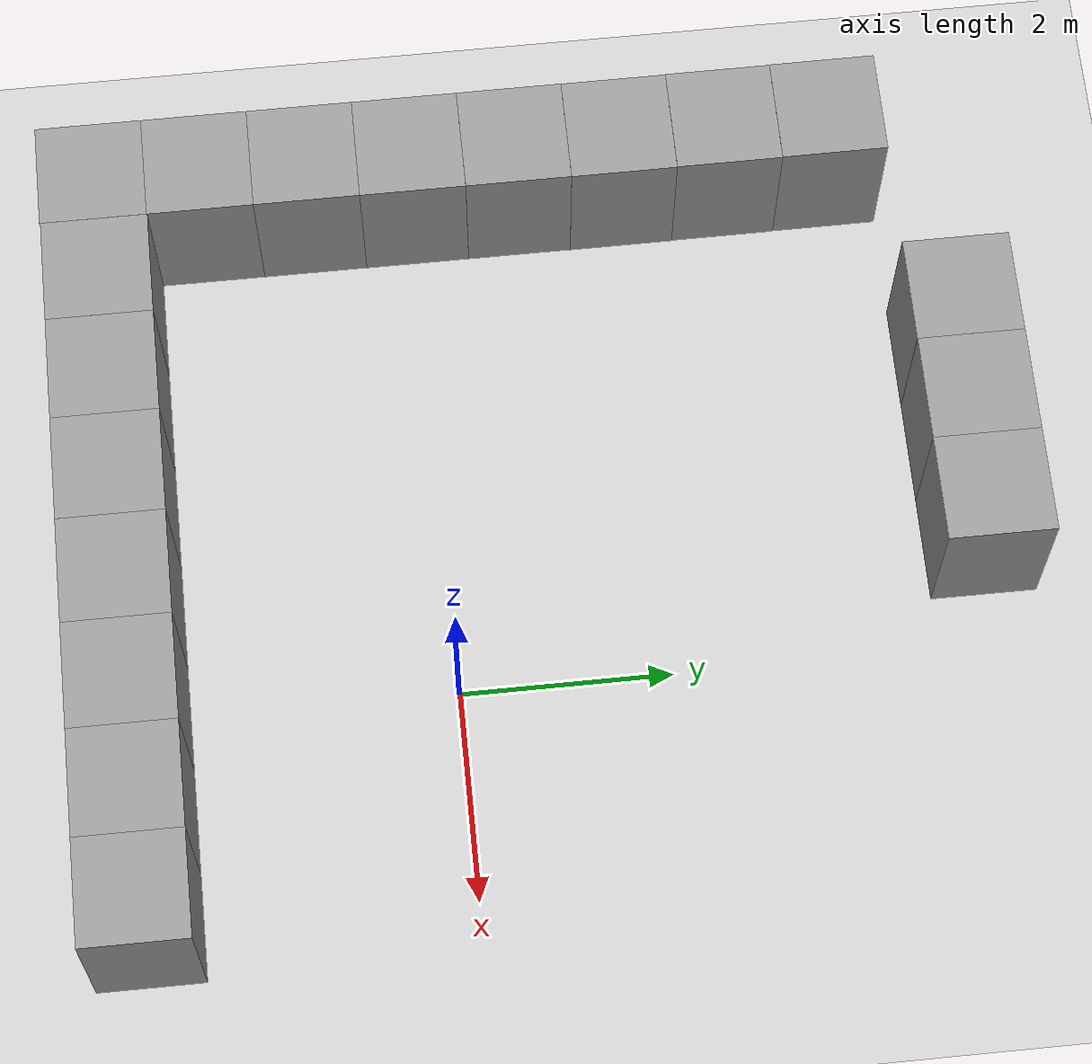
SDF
<sdf version="1.4">
 <world name="default">
  <model name="ground_plane">
   <static>1</static>
   <link name="link">
    <collision name="collision">
     <geometry><plane><normal>0 0 1</normal><size>100 100</size></plane></geometry>
     <surface><friction><ode><mu>100</mu><mu2>50</mu2></ode></friction></surface>
    </collision>
    <visual name="visual">
     <cast_shadows>0</cast_shadows>
     <geometry><plane><normal>0 0 1</normal><size>100 100</size></plane></geometry>
     <material>
      <script><uri>file://media/materials/scripts/gazebo.material</uri><name>Gazebo/Grey</name></script>
     </material>
    </visual>
    <velocity_decay><linear>0</linear><angular>0</angular></velocity_decay>
   </link>
  </model>
  <model name="unit_box_3">
   <pose>-3.0164 4.98791 0.5 0 -0 2.1e-05</pose>
   <static>true</static>
   <link name="link">
    <inertial>
     <mass>1</mass>
     <inertia><ixx>1</ixx><ixy>0</ixy><ixz>0</ixz><iyy>1</iyy><iyz>0</iyz><izz>1</izz></inertia>
    </inertial>
    <collision name="collision"><geometry><box><size>1 1 2</size></box></geometry></collision>
    <visual name="visual">
     <geometry><box><size>1 1 2</size></box></geometry>
     <material>
      <script><uri>file://media/materials/scripts/gazebo.material</uri><name>Gazebo/Grey</name></script>
     </material>
    </visual>
    <velocity_decay><linear>0</linear><angular>0</angular></velocity_decay>
   </link>
   <static>0</static>
  </model>
  <model name="unit_box_4">
   <pose>-2.01625 4.98914 0.5 0 -0 -0.000278</pose>
   <static>true</static>
   <link name="link">
    <inertial>
     <mass>1</mass>
     <inertia><ixx>1</ixx><ixy>0</ixy><ixz>0</ixz><iyy>1</iyy><iyz>0</iyz><izz>1</izz></inertia>
    </inertial>
    <collision name="collision"><geometry><box><size>1 1 2</size></box></geometry></collision>
    <visual name="visual">
     <geometry><box><size>1 1 2</size></box></geometry>
     <material>
      <script><uri>file://media/materials/scripts/gazebo.material</uri><name>Gazebo/Grey</name></script>
     </material>
    </visual>
    <velocity_decay><linear>0</linear><angular>0</angular></velocity_decay>
   </link>
   <static>0</static>
  </model>
  <model name="unit_box_5">
   <pose>-1.01623 4.98884 0.5 0 -0 -0.000319</pose>
   <static>true</static>
   <link name="link">
    <inertial>
     <mass>1</mass>
     <inertia><ixx>1</ixx><ixy>0</ixy><ixz>0</ixz><iyy>1</iyy><iyz>0</iyz><izz>1</izz></inertia>
    </inertial>
    <collision name="collision"><geometry><box><size>1 1 2</size></box></geometry></collision>
    <visual name="visual">
     <geometry><box><size>1 1 2</size></box></geometry>
     <material>
      <script><uri>file://media/materials/scripts/gazebo.material</uri><name>Gazebo/Grey</name></script>
     </material>
    </visual>
    <velocity_decay><linear>0</linear><angular>0</angular></velocity_decay>
   </link>
   <static>0</static>
  </model>
  <model name="unit_box_15">
   <pose>-0.999934 -2.99993 0.5 0 0 -3.9e-05</pose>
   <static>true</static>
   <link name="link">
    <inertial>
     <mass>1</mass>
     <inertia><ixx>1</ixx><ixy>0</ixy><ixz>0</ixz><iyy>1</iyy><iyz>0</iyz><izz>1</izz></inertia>
    </inertial>
    <collision name="collision"><geometry><box><size>1 1 2</size></box></geometry></collision>
    <visual name="visual">
     <geometry><box><size>1 1 2</size></box></geometry>
     <material>
      <script><uri>file://media/materials/scripts/gazebo.material</uri><name>Gazebo/Grey</name></script>
     </material>
    </visual>
    <velocity_decay><linear>0</linear><angular>0</angular></velocity_decay>
   </link>
   <static>0</static>
  </model>
  <model name="unit_box_16">
   <pose>6.7e-05 -2.99994 0.5 0 -0 -3.6e-05</pose>
   <static>true</static>
   <link name="link">
    <inertial>
     <mass>1</mass>
     <inertia><ixx>1</ixx><ixy>0</ixy><ixz>0</ixz><iyy>1</iyy><iyz>0</iyz><izz>1</izz></inertia>
    </inertial>
    <collision name="collision"><geometry><box><size>1 1 2</size></box></geometry></collision>
    <visual name="visual">
     <geometry><box><size>1 1 2</size></box></geometry>
     <material>
      <script><uri>file://media/materials/scripts/gazebo.material</uri><name>Gazebo/Grey</name></script>
     </material>
    </visual>
    <velocity_decay><linear>0</linear><angular>0</angular></velocity_decay>
   </link>
   <static>0</static>
  </model>
  <model name="unit_box_17">
   <pose>1.00008 -2.99994 0.5 -0 -0 -1.9e-05</pose>
   <static>true</static>
   <link name="link">
    <inertial>
     <mass>1</mass>
     <inertia><ixx>1</ixx><ixy>0</ixy><ixz>0</ixz><iyy>1</iyy><iyz>0</iyz><izz>1</izz></inertia>
    </inertial>
    <collision name="collision"><geometry><box><size>1 1 2</size></box></geometry></collision>
    <visual name="visual">
     <geometry><box><size>1 1 2</size></box></geometry>
     <material>
      <script><uri>file://media/materials/scripts/gazebo.material</uri><name>Gazebo/Grey</name></script>
     </material>
    </visual>
    <velocity_decay><linear>0</linear><angular>0</angular></velocity_decay>
   </link>
   <static>0</static>
  </model>
  <model name="unit_box_18">
   <pose>2.00008 -2.99995 0.5 0 0 -1.5e-05</pose>
   <static>true</static>
   <link name="link">
    <inertial>
     <mass>1</mass>
     <inertia><ixx>1</ixx><ixy>0</ixy><ixz>0</ixz><iyy>1</iyy><iyz>0</iyz><izz>1</izz></inertia>
    </inertial>
    <collision name="collision"><geometry><box><size>1 1 2</size></box></geometry></collision>
    <visual name="visual">
     <geometry><box><size>1 1 2</size></box></geometry>
     <material>
      <script><uri>file://media/materials/scripts/gazebo.material</uri><name>Gazebo/Grey</name></script>
     </material>
    </visual>
    <velocity_decay><linear>0</linear><angular>0</angular></velocity_decay>
   </link>
   <static>0</static>
  </model>
  <model name="unit_box_40">
   <pose>-5.01481 3.99235 0.5 0 -0 0.003225</pose>
   <static>true</static>
   <link name="link">
    <inertial>
     <mass>1</mass>
     <inertia><ixx>1</ixx><ixy>0</ixy><ixz>0</ixz><iyy>1</iyy><iyz>0</iyz><izz>1</izz></inertia>
    </inertial>
    <collision name="collision"><geometry><box><size>1 1 2</size></box></geometry></collision>
    <visual name="visual">
     <geometry><box><size>1 1 2</size></box></geometry>
     <material>
      <script><uri>file://media/materials/scripts/gazebo.material</uri><name>Gazebo/Grey</name></script>
     </material>
    </visual>
    <velocity_decay><linear>0</linear><angular>0</angular></velocity_decay>
   </link>
   <static>0</static>
  </model>
  <model name="unit_box_41">
   <pose>-5.00826 2.99203 0.5 0 -0 0.002598</pose>
   <static>true</static>
   <link name="link">
    <inertial>
     <mass>1</mass>
     <inertia><ixx>1</ixx><ixy>0</ixy><ixz>0</ixz><iyy>1</iyy><iyz>0</iyz><izz>1</izz></inertia>
    </inertial>
    <collision name="collision"><geometry><box><size>1 1 2</size></box></geometry></collision>
    <visual name="visual">
     <geometry><box><size>1 1 2</size></box></geometry>
     <material>
      <script><uri>file://media/materials/scripts/gazebo.material</uri><name>Gazebo/Grey</name></script>
     </material>
    </visual>
    <velocity_decay><linear>0</linear><angular>0</angular></velocity_decay>
   </link>
   <static>0</static>
  </model>
  <model name="unit_box_42">
   <pose>-5.0021 1.99164 0.5 0 -0 0.001796</pose>
   <static>true</static>
   <link name="link">
    <inertial>
     <mass>1</mass>
     <inertia><ixx>1</ixx><ixy>0</ixy><ixz>0</ixz><iyy>1</iyy><iyz>0</iyz><izz>1</izz></inertia>
    </inertial>
    <collision name="collision"><geometry><box><size>1 1 2</size></box></geometry></collision>
    <visual name="visual">
     <geometry><box><size>1 1 2</size></box></geometry>
     <material>
      <script><uri>file://media/materials/scripts/gazebo.material</uri><name>Gazebo/Grey</name></script>
     </material>
    </visual>
    <velocity_decay><linear>0</linear><angular>0</angular></velocity_decay>
   </link>
   <static>0</static>
  </model>
  <model name="unit_box_43">
   <pose>-5.00197 0.99143 0.5 0 -0 0.001375</pose>
   <static>true</static>
   <link name="link">
    <inertial>
     <mass>1</mass>
     <inertia><ixx>1</ixx><ixy>0</ixy><ixz>0</ixz><iyy>1</iyy><iyz>0</iyz><izz>1</izz></inertia>
    </inertial>
    <collision name="collision"><geometry><box><size>1 1 2</size></box></geometry></collision>
    <visual name="visual">
     <geometry><box><size>1 1 2</size></box></geometry>
     <material>
      <script><uri>file://media/materials/scripts/gazebo.material</uri><name>Gazebo/Grey</name></script>
     </material>
    </visual>
    <velocity_decay><linear>0</linear><angular>0</angular></velocity_decay>
   </link>
   <static>0</static>
  </model>
  <model name="unit_box_44">
   <pose>-5.00065 -0.008792 0.5 0 -0 0.000932</pose>
   <static>true</static>
   <link name="link">
    <inertial>
     <mass>1</mass>
     <inertia><ixx>1</ixx><ixy>0</ixy><ixz>0</ixz><iyy>1</iyy><iyz>0</iyz><izz>1</izz></inertia>
    </inertial>
    <collision name="collision"><geometry><box><size>1 1 2</size></box></geometry></collision>
    <visual name="visual">
     <geometry><box><size>1 1 2</size></box></geometry>
     <material>
      <script><uri>file://media/materials/scripts/gazebo.material</uri><name>Gazebo/Grey</name></script>
     </material>
    </visual>
    <velocity_decay><linear>0</linear><angular>0</angular></velocity_decay>
   </link>
   <static>0</static>
  </model>
  <model name="unit_box_45">
   <pose>-5.00074 -1.00881 0.5 0 -0 0.000893</pose>
   <static>true</static>
   <link name="link">
    <inertial>
     <mass>1</mass>
     <inertia><ixx>1</ixx><ixy>0</ixy><ixz>0</ixz><iyy>1</iyy><iyz>0</iyz><izz>1</izz></inertia>
    </inertial>
    <collision name="collision"><geometry><box><size>1 1 2</size></box></geometry></collision>
    <visual name="visual">
     <geometry><box><size>1 1 2</size></box></geometry>
     <material>
      <script><uri>file://media/materials/scripts/gazebo.material</uri><name>Gazebo/Grey</name></script>
     </material>
    </visual>
    <velocity_decay><linear>0</linear><angular>0</angular></velocity_decay>
   </link>
   <static>0</static>
  </model>
  <model name="unit_box_46">
   <pose>-5.00037 -2.00886 0.5 0 -0 0.000802</pose>
   <static>true</static>
   <link name="link">
    <inertial>
     <mass>1</mass>
     <inertia><ixx>1</ixx><ixy>0</ixy><ixz>0</ixz><iyy>1</iyy><iyz>0</iyz><izz>1</izz></inertia>
    </inertial>
    <collision name="collision"><geometry><box><size>1 1 2</size></box></geometry></collision>
    <visual name="visual">
     <geometry><box><size>1 1 2</size></box></geometry>
     <material>
      <script><uri>file://media/materials/scripts/gazebo.material</uri><name>Gazebo/Grey</name></script>
     </material>
    </visual>
    <velocity_decay><linear>0</linear><angular>0</angular></velocity_decay>
   </link>
   <static>0</static>
  </model>
  <model name="unit_box_47">
   <pose>-5.00047 -3.0089 0.5 0 -0 0.000729</pose>
   <static>true</static>
   <link name="link">
    <inertial>
     <mass>1</mass>
     <inertia><ixx>1</ixx><ixy>0</ixy><ixz>0</ixz><iyy>1</iyy><iyz>0</iyz><izz>1</izz></inertia>
    </inertial>
    <collision name="collision"><geometry><box><size>1 1 2</size></box></geometry></collision>
    <visual name="visual">
     <geometry><box><size>1 1 2</size></box></geometry>
     <material>
      <script><uri>file://media/materials/scripts/gazebo.material</uri><name>Gazebo/Grey</name></script>
     </material>
    </visual>
    <velocity_decay><linear>0</linear><angular>0</angular></velocity_decay>
   </link>
   <static>0</static>
  </model>
  <model name="unit_box_48">
   <pose>-3.99998 -3.00036 0.5 0 0 -0.000119</pose>
   <static>true</static>
   <link name="link">
    <inertial>
     <mass>1</mass>
     <inertia><ixx>1</ixx><ixy>0</ixy><ixz>0</ixz><iyy>1</iyy><iyz>0</iyz><izz>1</izz></inertia>
    </inertial>
    <collision name="collision"><geometry><box><size>1 1 2</size></box></geometry></collision>
    <visual name="visual">
     <geometry><box><size>1 1 2</size></box></geometry>
     <material>
      <script><uri>file://media/materials/scripts/gazebo.material</uri><name>Gazebo/Grey</name></script>
     </material>
    </visual>
    <velocity_decay><linear>0</linear><angular>0</angular></velocity_decay>
   </link>
   <static>0</static>
  </model>
  <model name="unit_box_49">
   <pose>-2.99995 -3.00005 0.5 -0 -0 -7.3e-05</pose>
   <static>true</static>
   <link name="link">
    <inertial>
     <mass>1</mass>
     <inertia><ixx>1</ixx><ixy>0</ixy><ixz>0</ixz><iyy>1</iyy><iyz>0</iyz><izz>1</izz></inertia>
    </inertial>
    <collision name="collision"><geometry><box><size>1 1 2</size></box></geometry></collision>
    <visual name="visual">
     <geometry><box><size>1 1 2</size></box></geometry>
     <material>
      <script><uri>file://media/materials/scripts/gazebo.material</uri><name>Gazebo/Grey</name></script>
     </material>
    </visual>
    <velocity_decay><linear>0</linear><angular>0</angular></velocity_decay>
   </link>
   <static>0</static>
  </model>
  <model name="unit_box_50">
   <pose>-1.99995 -3.00002 0.5 -0 -0 -7.1e-05</pose>
   <static>true</static>
   <link name="link">
    <inertial>
     <mass>1</mass>
     <inertia><ixx>1</ixx><ixy>0</ixy><ixz>0</ixz><iyy>1</iyy><iyz>0</iyz><izz>1</izz></inertia>
    </inertial>
    <collision name="collision"><geometry><box><size>1 1 2</size></box></geometry></collision>
    <visual name="visual">
     <geometry><box><size>1 1 2</size></box></geometry>
     <material>
      <script><uri>file://media/materials/scripts/gazebo.material</uri><name>Gazebo/Grey</name></script>
     </material>
    </visual>
    <velocity_decay><linear>0</linear><angular>0</angular></velocity_decay>
   </link>
   <static>0</static>
  </model>
 </world>
</sdf>
